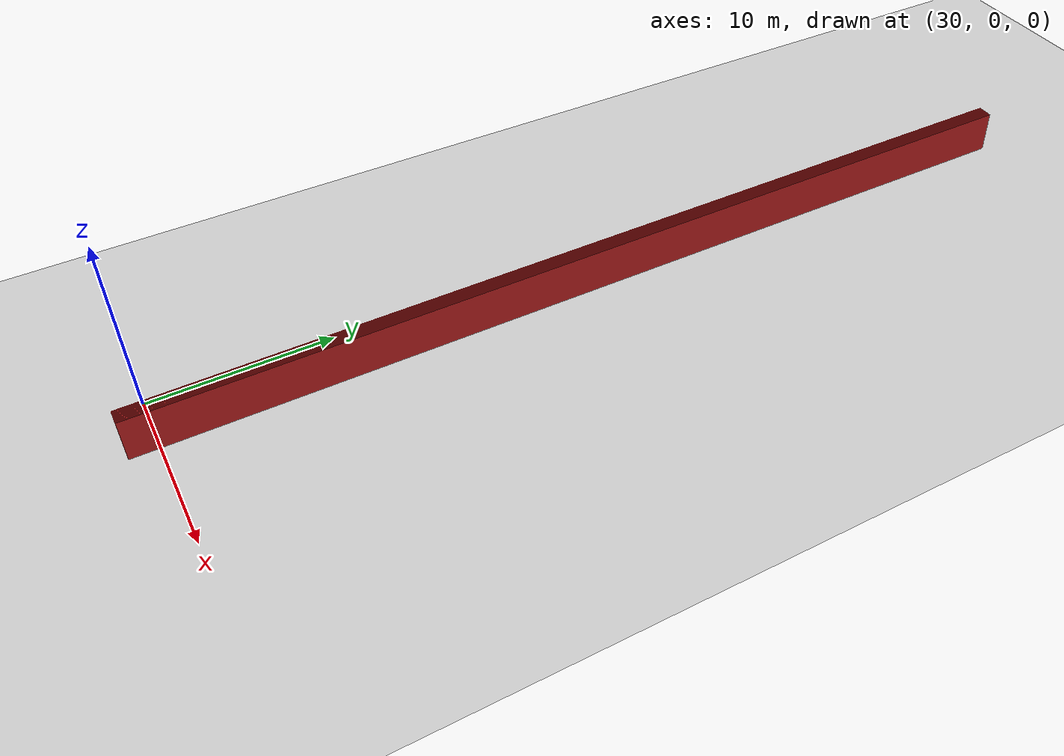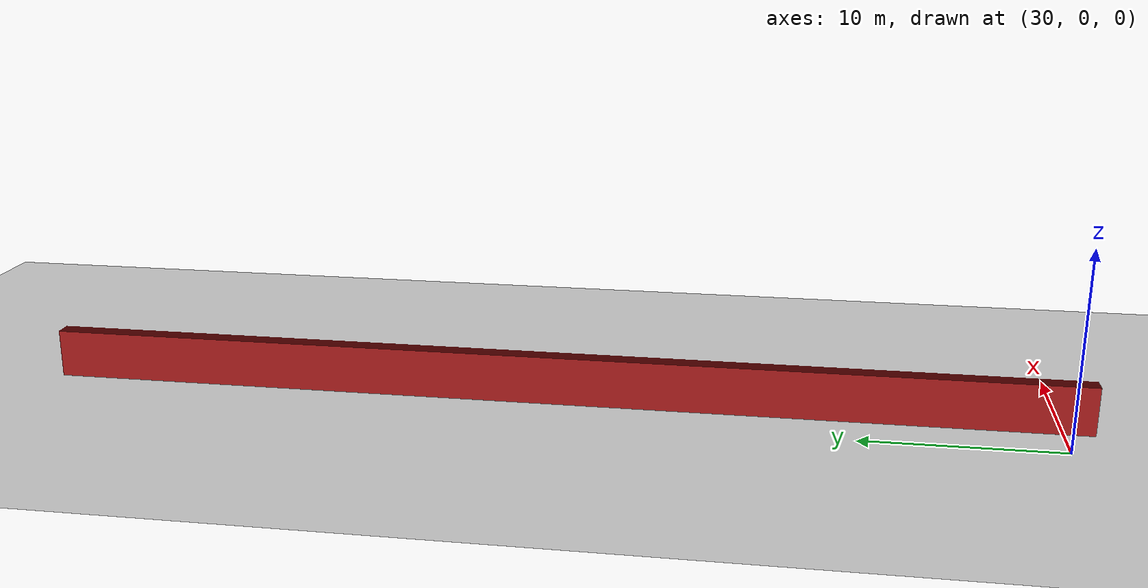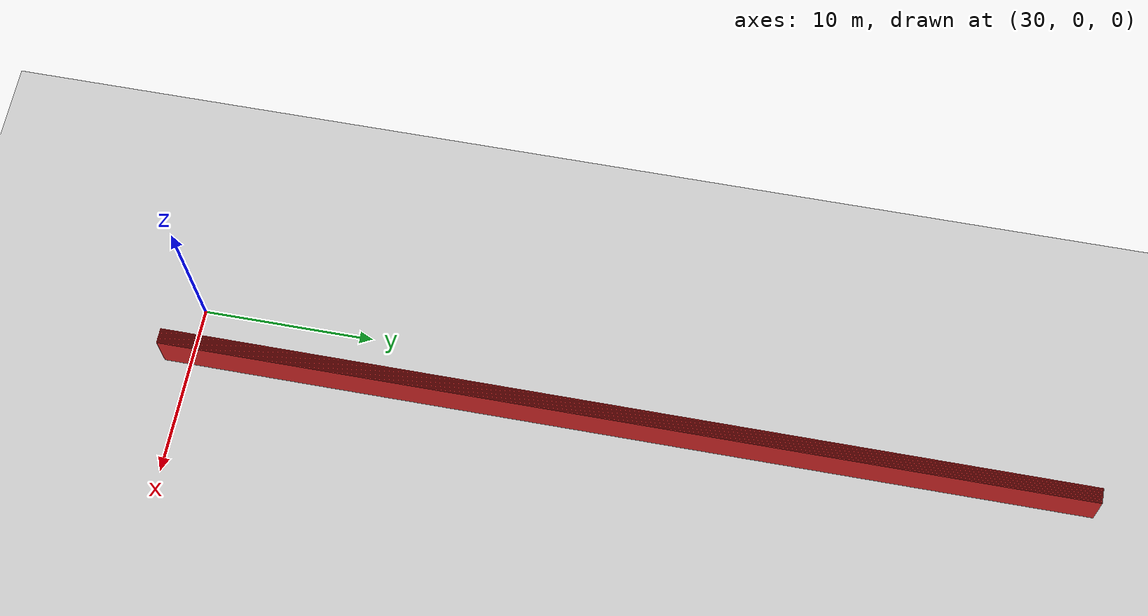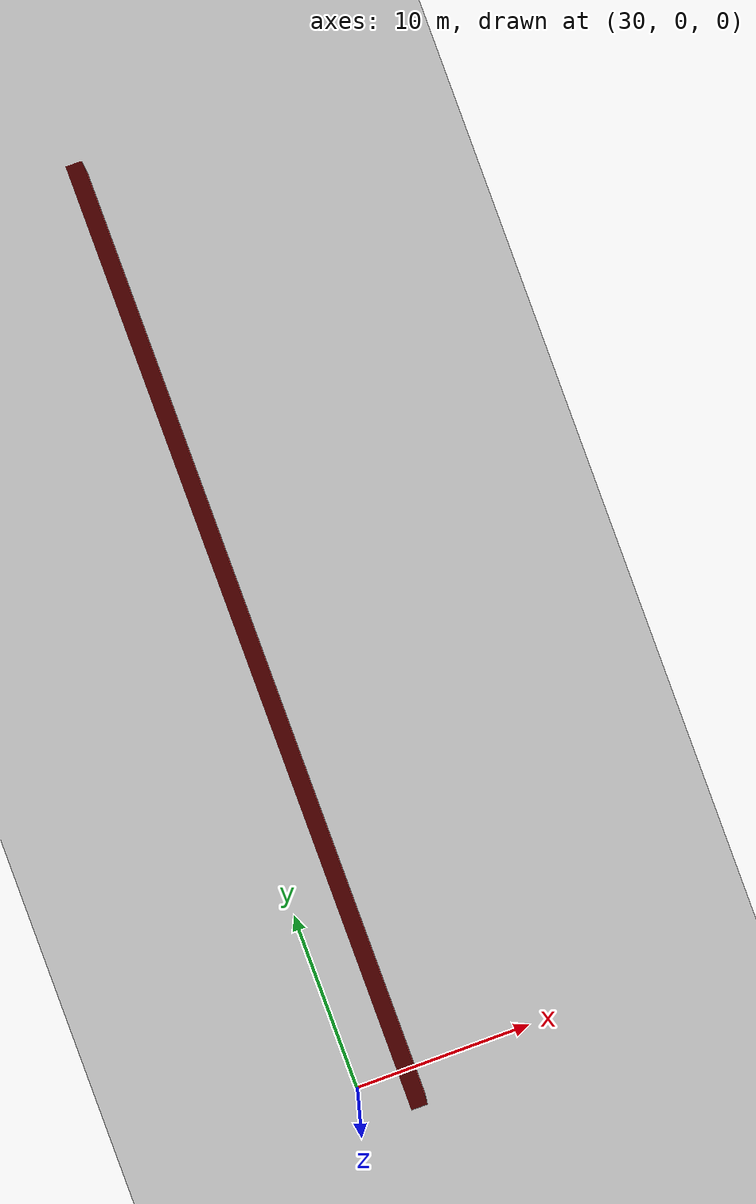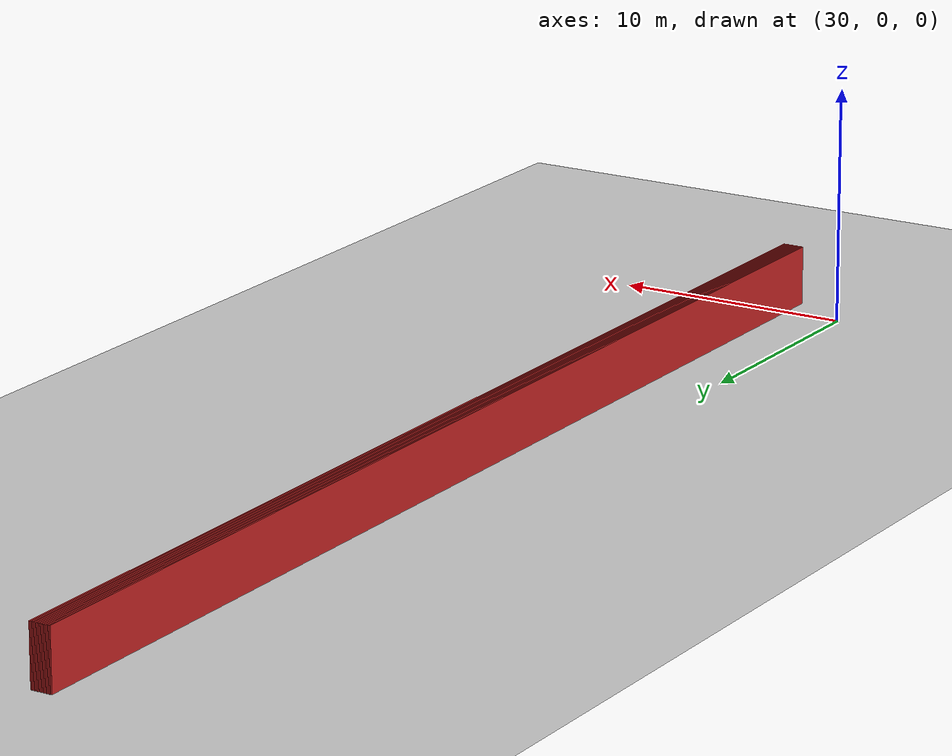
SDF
<sdf version="1.4">
 <world name="1_wall">
  <model name="ground_plane">
   <static>1</static>
   <link name="link">
    <collision name="collision">
     <geometry><plane><normal>0 0 1</normal><size>1000 1000</size></plane></geometry>
     <surface><friction><ode><mu>100</mu><mu2>50</mu2></ode></friction></surface>
    </collision>
    <visual name="visual">
     <cast_shadows>0</cast_shadows>
     <geometry><plane><normal>0 0 1</normal><size>10000 10000</size></plane></geometry>
     <material>
      <script><uri>file://media/materials/scripts/gazebo.material</uri><name>Gazebo/Grey</name></script>
     </material>
    </visual>
    <velocity_decay><linear>0</linear><angular>0</angular></velocity_decay>
   </link>
  </model>
  <model name="Wall_680">
   <static>1</static>
   <link name="Wall_680">
    <collision name="Wall_Collision_680">
     <geometry><box><size>53.65 0.05 2.5</size></box></geometry>
     <pose>0 0 1.25 0 -0 0</pose>
    </collision>
    <visual name="Wall_Visual_680">
     <pose>0 0 1.25 0 -0 0</pose>
     <geometry><box><size>53.65 0.05 2.5</size></box></geometry>
     <material>
      <script><uri>file://media/materials/scripts/gazebo.material</uri><name>Gazebo/Red</name></script>
     </material>
    </visual>
    <velocity_decay><linear>0</linear><angular>0</angular></velocity_decay>
    <pose>32.5 25.3 0 0 0 1.5707963267948966</pose>
   </link>
  </model>
  <model name="Wall_681">
   <static>1</static>
   <link name="Wall_681">
    <collision name="Wall_Collision_681">
     <geometry><box><size>53.65 0.05 2.5</size></box></geometry>
     <pose>0 0 1.25 0 -0 0</pose>
    </collision>
    <visual name="Wall_Visual_681">
     <pose>0 0 1.25 0 -0 0</pose>
     <geometry><box><size>53.65 0.05 2.5</size></box></geometry>
     <material>
      <script><uri>file://media/materials/scripts/gazebo.material</uri><name>Gazebo/Red</name></script>
     </material>
    </visual>
    <velocity_decay><linear>0</linear><angular>0</angular></velocity_decay>
    <pose>32.55 25.3 0 0 0 1.5707963267948966</pose>
   </link>
  </model>
  <model name="Wall_682">
   <static>1</static>
   <link name="Wall_682">
    <collision name="Wall_Collision_682">
     <geometry><box><size>53.65 0.05 2.5</size></box></geometry>
     <pose>0 0 1.25 0 -0 0</pose>
    </collision>
    <visual name="Wall_Visual_682">
     <pose>0 0 1.25 0 -0 0</pose>
     <geometry><box><size>53.65 0.05 2.5</size></box></geometry>
     <material>
      <script><uri>file://media/materials/scripts/gazebo.material</uri><name>Gazebo/Red</name></script>
     </material>
    </visual>
    <velocity_decay><linear>0</linear><angular>0</angular></velocity_decay>
    <pose>32.6 25.3 0 0 0 1.5707963267948966</pose>
   </link>
  </model>
  <model name="Wall_683">
   <static>1</static>
   <link name="Wall_683">
    <collision name="Wall_Collision_683">
     <geometry><box><size>53.65 0.05 2.5</size></box></geometry>
     <pose>0 0 1.25 0 -0 0</pose>
    </collision>
    <visual name="Wall_Visual_683">
     <pose>0 0 1.25 0 -0 0</pose>
     <geometry><box><size>53.65 0.05 2.5</size></box></geometry>
     <material>
      <script><uri>file://media/materials/scripts/gazebo.material</uri><name>Gazebo/Red</name></script>
     </material>
    </visual>
    <velocity_decay><linear>0</linear><angular>0</angular></velocity_decay>
    <pose>32.65 25.3 0 0 0 1.5707963267948966</pose>
   </link>
  </model>
  <model name="Wall_684">
   <static>1</static>
   <link name="Wall_684">
    <collision name="Wall_Collision_684">
     <geometry><box><size>53.65 0.05 2.5</size></box></geometry>
     <pose>0 0 1.25 0 -0 0</pose>
    </collision>
    <visual name="Wall_Visual_684">
     <pose>0 0 1.25 0 -0 0</pose>
     <geometry><box><size>53.65 0.05 2.5</size></box></geometry>
     <material>
      <script><uri>file://media/materials/scripts/gazebo.material</uri><name>Gazebo/Red</name></script>
     </material>
    </visual>
    <velocity_decay><linear>0</linear><angular>0</angular></velocity_decay>
    <pose>32.7 25.3 0 0 0 1.5707963267948966</pose>
   </link>
  </model>
  <model name="Wall_685">
   <static>1</static>
   <link name="Wall_685">
    <collision name="Wall_Collision_685">
     <geometry><box><size>53.65 0.05 2.5</size></box></geometry>
     <pose>0 0 1.25 0 -0 0</pose>
    </collision>
    <visual name="Wall_Visual_685">
     <pose>0 0 1.25 0 -0 0</pose>
     <geometry><box><size>53.65 0.05 2.5</size></box></geometry>
     <material>
      <script><uri>file://media/materials/scripts/gazebo.material</uri><name>Gazebo/Red</name></script>
     </material>
    </visual>
    <velocity_decay><linear>0</linear><angular>0</angular></velocity_decay>
    <pose>32.75 25.3 0 0 0 1.5707963267948966</pose>
   </link>
  </model>
  <model name="Wall_686">
   <static>1</static>
   <link name="Wall_686">
    <collision name="Wall_Collision_686">
     <geometry><box><size>53.65 0.05 2.5</size></box></geometry>
     <pose>0 0 1.25 0 -0 0</pose>
    </collision>
    <visual name="Wall_Visual_686">
     <pose>0 0 1.25 0 -0 0</pose>
     <geometry><box><size>53.65 0.05 2.5</size></box></geometry>
     <material>
      <script><uri>file://media/materials/scripts/gazebo.material</uri><name>Gazebo/Red</name></script>
     </material>
    </visual>
    <velocity_decay><linear>0</linear><angular>0</angular></velocity_decay>
    <pose>32.8 25.3 0 0 0 1.5707963267948966</pose>
   </link>
  </model>
  <model name="Wall_687">
   <static>1</static>
   <link name="Wall_687">
    <collision name="Wall_Collision_687">
     <geometry><box><size>53.65 0.05 2.5</size></box></geometry>
     <pose>0 0 1.25 0 -0 0</pose>
    </collision>
    <visual name="Wall_Visual_687">
     <pose>0 0 1.25 0 -0 0</pose>
     <geometry><box><size>53.65 0.05 2.5</size></box></geometry>
     <material>
      <script><uri>file://media/materials/scripts/gazebo.material</uri><name>Gazebo/Red</name></script>
     </material>
    </visual>
    <velocity_decay><linear>0</linear><angular>0</angular></velocity_decay>
    <pose>32.85 25.3 0 0 0 1.5707963267948966</pose>
   </link>
  </model>
  <model name="Wall_688">
   <static>1</static>
   <link name="Wall_688">
    <collision name="Wall_Collision_688">
     <geometry><box><size>53.65 0.05 2.5</size></box></geometry>
     <pose>0 0 1.25 0 -0 0</pose>
    </collision>
    <visual name="Wall_Visual_688">
     <pose>0 0 1.25 0 -0 0</pose>
     <geometry><box><size>53.65 0.05 2.5</size></box></geometry>
     <material>
      <script><uri>file://media/materials/scripts/gazebo.material</uri><name>Gazebo/Red</name></script>
     </material>
    </visual>
    <velocity_decay><linear>0</linear><angular>0</angular></velocity_decay>
    <pose>32.9 25.3 0 0 0 1.5707963267948966</pose>
   </link>
  </model>
  <model name="Wall_689">
   <static>1</static>
   <link name="Wall_689">
    <collision name="Wall_Collision_689">
     <geometry><box><size>53.65 0.05 2.5</size></box></geometry>
     <pose>0 0 1.25 0 -0 0</pose>
    </collision>
    <visual name="Wall_Visual_689">
     <pose>0 0 1.25 0 -0 0</pose>
     <geometry><box><size>53.65 0.05 2.5</size></box></geometry>
     <material>
      <script><uri>file://media/materials/scripts/gazebo.material</uri><name>Gazebo/Red</name></script>
     </material>
    </visual>
    <velocity_decay><linear>0</linear><angular>0</angular></velocity_decay>
    <pose>32.95 25.3 0 0 0 1.5707963267948966</pose>
   </link>
  </model>
  <model name="Wall_690">
   <static>1</static>
   <link name="Wall_690">
    <collision name="Wall_Collision_690">
     <geometry><box><size>53.65 0.05 2.5</size></box></geometry>
     <pose>0 0 1.25 0 -0 0</pose>
    </collision>
    <visual name="Wall_Visual_690">
     <pose>0 0 1.25 0 -0 0</pose>
     <geometry><box><size>53.65 0.05 2.5</size></box></geometry>
     <material>
      <script><uri>file://media/materials/scripts/gazebo.material</uri><name>Gazebo/Red</name></script>
     </material>
    </visual>
    <velocity_decay><linear>0</linear><angular>0</angular></velocity_decay>
    <pose>33.0 25.3 0 0 0 1.5707963267948966</pose>
   </link>
  </model>
  <model name="Wall_691">
   <static>1</static>
   <link name="Wall_691">
    <collision name="Wall_Collision_691">
     <geometry><box><size>53.65 0.05 2.5</size></box></geometry>
     <pose>0 0 1.25 0 -0 0</pose>
    </collision>
    <visual name="Wall_Visual_691">
     <pose>0 0 1.25 0 -0 0</pose>
     <geometry><box><size>53.65 0.05 2.5</size></box></geometry>
     <material>
      <script><uri>file://media/materials/scripts/gazebo.material</uri><name>Gazebo/Red</name></script>
     </material>
    </visual>
    <velocity_decay><linear>0</linear><angular>0</angular></velocity_decay>
    <pose>33.05 25.3 0 0 0 1.5707963267948966</pose>
   </link>
  </model>
  <model name="Wall_692">
   <static>1</static>
   <link name="Wall_692">
    <collision name="Wall_Collision_692">
     <geometry><box><size>53.65 0.05 2.5</size></box></geometry>
     <pose>0 0 1.25 0 -0 0</pose>
    </collision>
    <visual name="Wall_Visual_692">
     <pose>0 0 1.25 0 -0 0</pose>
     <geometry><box><size>53.65 0.05 2.5</size></box></geometry>
     <material>
      <script><uri>file://media/materials/scripts/gazebo.material</uri><name>Gazebo/Red</name></script>
     </material>
    </visual>
    <velocity_decay><linear>0</linear><angular>0</angular></velocity_decay>
    <pose>33.1 25.3 0 0 0 1.5707963267948966</pose>
   </link>
  </model>
  <model name="Wall_693">
   <static>1</static>
   <link name="Wall_693">
    <collision name="Wall_Collision_693">
     <geometry><box><size>53.65 0.05 2.5</size></box></geometry>
     <pose>0 0 1.25 0 -0 0</pose>
    </collision>
    <visual name="Wall_Visual_693">
     <pose>0 0 1.25 0 -0 0</pose>
     <geometry><box><size>53.65 0.05 2.5</size></box></geometry>
     <material>
      <script><uri>file://media/materials/scripts/gazebo.material</uri><name>Gazebo/Red</name></script>
     </material>
    </visual>
    <velocity_decay><linear>0</linear><angular>0</angular></velocity_decay>
    <pose>33.15 25.3 0 0 0 1.5707963267948966</pose>
   </link>
  </model>
  <model name="Wall_694">
   <static>1</static>
   <link name="Wall_694">
    <collision name="Wall_Collision_694">
     <geometry><box><size>53.65 0.05 2.5</size></box></geometry>
     <pose>0 0 1.25 0 -0 0</pose>
    </collision>
    <visual name="Wall_Visual_694">
     <pose>0 0 1.25 0 -0 0</pose>
     <geometry><box><size>53.65 0.05 2.5</size></box></geometry>
     <material>
      <script><uri>file://media/materials/scripts/gazebo.material</uri><name>Gazebo/Red</name></script>
     </material>
    </visual>
    <velocity_decay><linear>0</linear><angular>0</angular></velocity_decay>
    <pose>33.2 25.3 0 0 0 1.5707963267948966</pose>
   </link>
  </model>
  <model name="Wall_695">
   <static>1</static>
   <link name="Wall_695">
    <collision name="Wall_Collision_695">
     <geometry><box><size>53.65 0.05 2.5</size></box></geometry>
     <pose>0 0 1.25 0 -0 0</pose>
    </collision>
    <visual name="Wall_Visual_695">
     <pose>0 0 1.25 0 -0 0</pose>
     <geometry><box><size>53.65 0.05 2.5</size></box></geometry>
     <material>
      <script><uri>file://media/materials/scripts/gazebo.material</uri><name>Gazebo/Red</name></script>
     </material>
    </visual>
    <velocity_decay><linear>0</linear><angular>0</angular></velocity_decay>
    <pose>33.25 25.3 0 0 0 1.5707963267948966</pose>
   </link>
  </model>
  <model name="Wall_696">
   <static>1</static>
   <link name="Wall_696">
    <collision name="Wall_Collision_696">
     <geometry><box><size>53.65 0.05 2.5</size></box></geometry>
     <pose>0 0 1.25 0 -0 0</pose>
    </collision>
    <visual name="Wall_Visual_696">
     <pose>0 0 1.25 0 -0 0</pose>
     <geometry><box><size>53.65 0.05 2.5</size></box></geometry>
     <material>
      <script><uri>file://media/materials/scripts/gazebo.material</uri><name>Gazebo/Red</name></script>
     </material>
    </visual>
    <velocity_decay><linear>0</linear><angular>0</angular></velocity_decay>
    <pose>33.3 25.3 0 0 0 1.5707963267948966</pose>
   </link>
  </model>
  <model name="Wall_697">
   <static>1</static>
   <link name="Wall_697">
    <collision name="Wall_Collision_697">
     <geometry><box><size>53.65 0.05 2.5</size></box></geometry>
     <pose>0 0 1.25 0 -0 0</pose>
    </collision>
    <visual name="Wall_Visual_697">
     <pose>0 0 1.25 0 -0 0</pose>
     <geometry><box><size>53.65 0.05 2.5</size></box></geometry>
     <material>
      <script><uri>file://media/materials/scripts/gazebo.material</uri><name>Gazebo/Red</name></script>
     </material>
    </visual>
    <velocity_decay><linear>0</linear><angular>0</angular></velocity_decay>
    <pose>33.35 25.3 0 0 0 1.5707963267948966</pose>
   </link>
  </model>
 </world>
</sdf>
